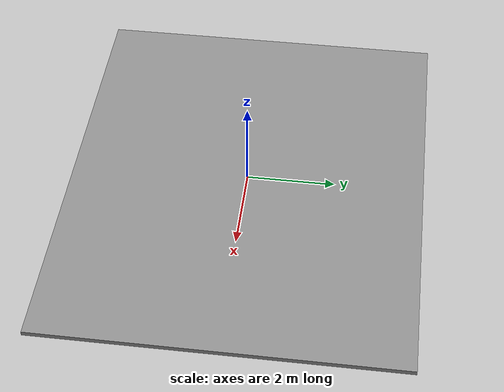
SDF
<?xml version="1.0" ?>
<sdf version="1.9">

  <world name="factory_test">

    <!-- Gazebo systems -->
    <plugin
      filename="gz-sim-physics-system"
      name="gz::sim::systems::Physics"/>

    <plugin
      filename="gz-sim-user-commands-system"
      name="gz::sim::systems::UserCommands"/>

    <plugin
      filename="gz-sim-scene-broadcaster-system"
      name="gz::sim::systems::SceneBroadcaster"/>

    <plugin
      filename="gz-sim-sensors-system"
      name="gz::sim::systems::Sensors">
      <render_engine>ogre2</render_engine>
    </plugin>

    <!-- Gravity -->
    <gravity>0 0 -9.81</gravity>

    <!-- Sun -->
    <light type="directional" name="sun">

      <cast_shadows>true</cast_shadows>

      <pose>0 0 10 0 0 0</pose>

      <diffuse>0.8 0.8 0.8 1</diffuse>
      <specular>0.2 0.2 0.2 1</specular>

      <attenuation>
        <range>1000</range>
        <constant>0.9</constant>
        <linear>0.01</linear>
        <quadratic>0.001</quadratic>
      </attenuation>

      <direction>-0.5 0.1 -0.9</direction>

    </light>

    <!-- Factory floor -->
    <model name="factory_floor">

      <static>true</static>

      <link name="floor_link">

        <collision name="floor_collision">
          <geometry>
            <box>
              <size>10 8 0.1</size>
            </box>
          </geometry>
        </collision>

        <visual name="floor_visual">
          <geometry>
            <box>
              <size>10 8 0.1</size>
            </box>
          </geometry>

          <material>
            <ambient>0.55 0.55 0.55 1</ambient>
            <diffuse>0.55 0.55 0.55 1</diffuse>
          </material>

        </visual>

      </link>

      <pose>0 0 -0.05 0 0 0</pose>

    </model>

  </world>

</sdf>
